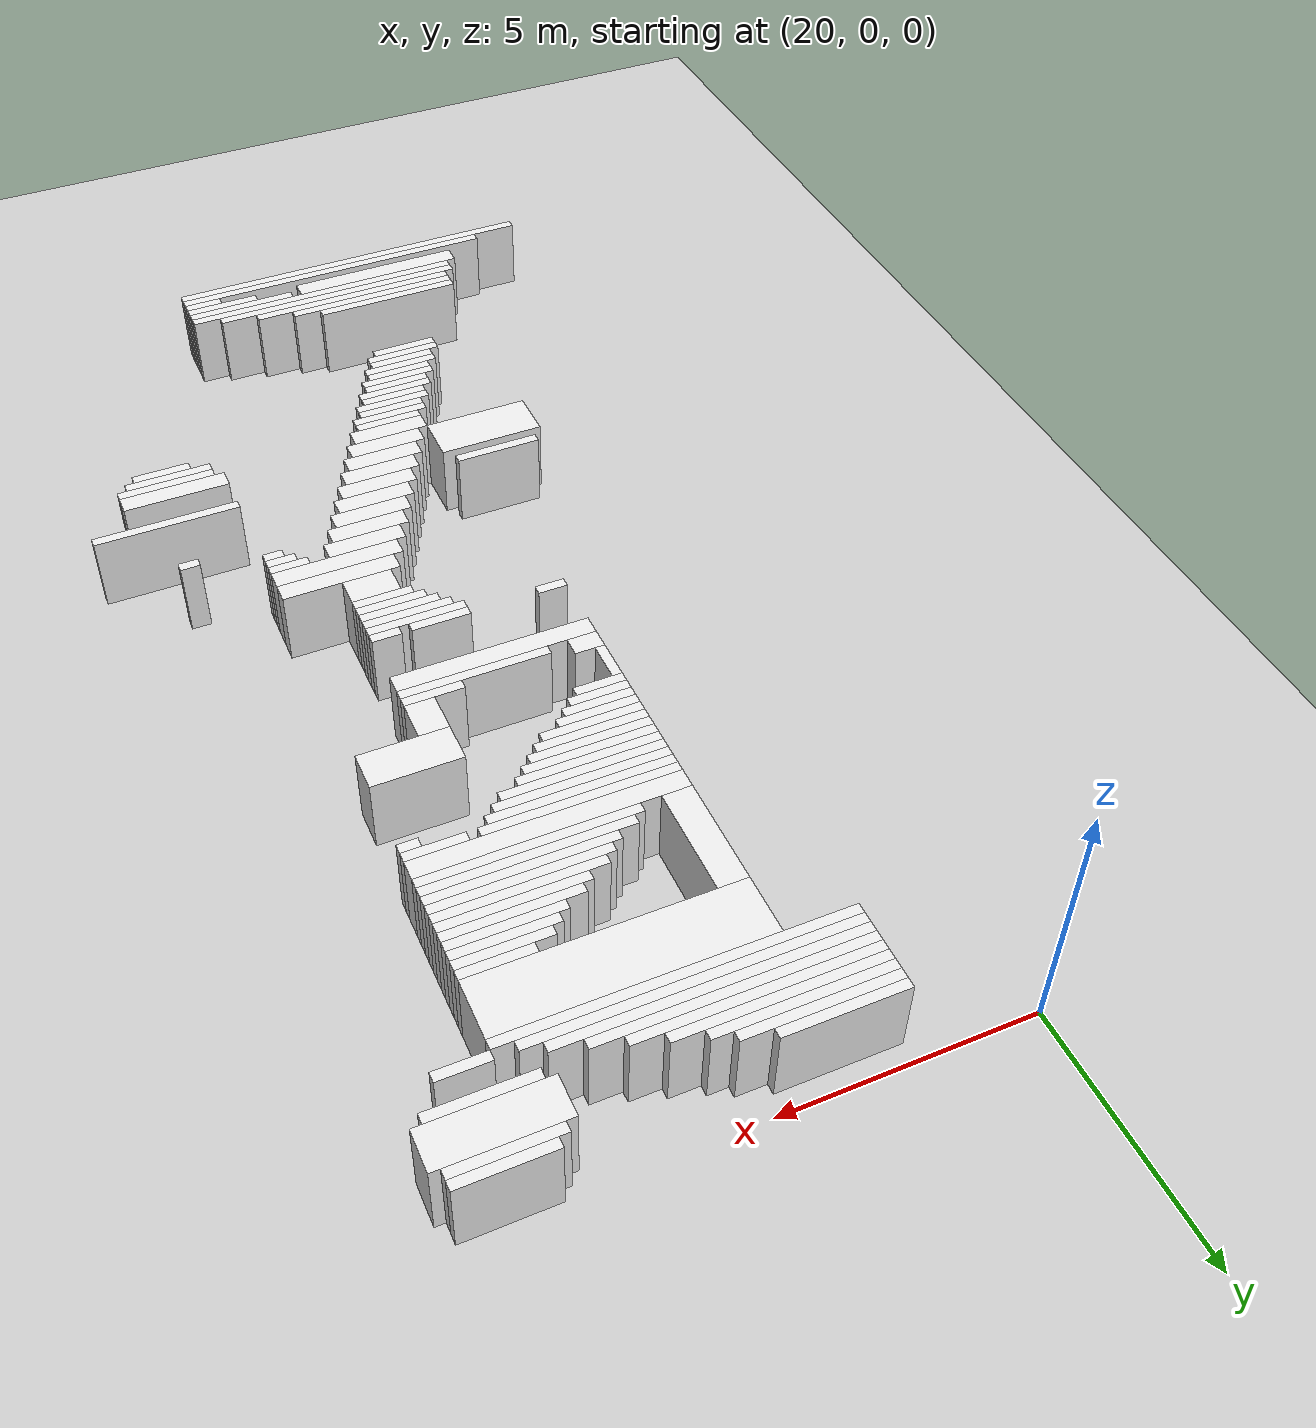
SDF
<sdf version="1.7">
 <world name="default">
  <model name="ground_plane">
   <static>1</static>
   <link name="link">
    <collision name="collision">
     <geometry><plane><normal>0 0 1</normal><size>120 120</size></plane></geometry>
    </collision>
    <visual name="visual">
     <geometry><plane><normal>0 0 1</normal><size>120 120</size></plane></geometry>
     <material>
      <script><uri>file://media/materials/scripts/gazebo.material</uri><name>Gazebo/Grey</name></script>
     </material>
    </visual>
   </link>
  </model>
  <model name="random_complex_02_model">
   <static>1</static>
   <link name="obs_1977">
    <pose>29.5000 -0.1000 0.8000 0 0 0</pose>
    <collision name="obs_1977_col"><geometry><box><size>1.8000 0.2000 1.6000</size></box></geometry></collision>
    <visual name="obs_1977_vis">
     <geometry><box><size>1.8000 0.2000 1.6000</size></box></geometry>
     <material>
      <script><uri>file://media/materials/scripts/gazebo.material</uri><name>Gazebo/White</name></script>
     </material>
    </visual>
   </link>
   <link name="obs_1984">
    <pose>29.4000 -0.3000 0.8000 0 0 0</pose>
    <collision name="obs_1984_col"><geometry><box><size>2.0000 0.2000 1.6000</size></box></geometry></collision>
    <visual name="obs_1984_vis">
     <geometry><box><size>2.0000 0.2000 1.6000</size></box></geometry>
     <material>
      <script><uri>file://media/materials/scripts/gazebo.material</uri><name>Gazebo/White</name></script>
     </material>
    </visual>
   </link>
   <link name="obs_1991">
    <pose>23.6000 -0.5000 0.8000 0 0 0</pose>
    <collision name="obs_1991_col"><geometry><box><size>2.4000 0.2000 1.6000</size></box></geometry></collision>
    <visual name="obs_1991_vis">
     <geometry><box><size>2.4000 0.2000 1.6000</size></box></geometry>
     <material>
      <script><uri>file://media/materials/scripts/gazebo.material</uri><name>Gazebo/White</name></script>
     </material>
    </visual>
   </link>
   <link name="obs_1999">
    <pose>23.9000 -0.7000 0.8000 0 0 0</pose>
    <collision name="obs_1999_col"><geometry><box><size>3.0000 0.2000 1.6000</size></box></geometry></collision>
    <visual name="obs_1999_vis">
     <geometry><box><size>3.0000 0.2000 1.6000</size></box></geometry>
     <material>
      <script><uri>file://media/materials/scripts/gazebo.material</uri><name>Gazebo/White</name></script>
     </material>
    </visual>
   </link>
   <link name="obs_2011">
    <pose>24.1000 -0.9000 0.8000 0 0 0</pose>
    <collision name="obs_2011_col"><geometry><box><size>3.4000 0.2000 1.6000</size></box></geometry></collision>
    <visual name="obs_2011_vis">
     <geometry><box><size>3.4000 0.2000 1.6000</size></box></geometry>
     <material>
      <script><uri>file://media/materials/scripts/gazebo.material</uri><name>Gazebo/White</name></script>
     </material>
    </visual>
   </link>
   <link name="obs_2016">
    <pose>29.4000 -0.8000 0.8000 0 0 0</pose>
    <collision name="obs_2016_col"><geometry><box><size>2.4000 0.8000 1.6000</size></box></geometry></collision>
    <visual name="obs_2016_vis">
     <geometry><box><size>2.4000 0.8000 1.6000</size></box></geometry>
     <material>
      <script><uri>file://media/materials/scripts/gazebo.material</uri><name>Gazebo/White</name></script>
     </material>
    </visual>
   </link>
   <link name="obs_2020">
    <pose>24.4000 -1.1000 0.8000 0 0 0</pose>
    <collision name="obs_2020_col"><geometry><box><size>4.0000 0.2000 1.6000</size></box></geometry></collision>
    <visual name="obs_2020_vis">
     <geometry><box><size>4.0000 0.2000 1.6000</size></box></geometry>
     <material>
      <script><uri>file://media/materials/scripts/gazebo.material</uri><name>Gazebo/White</name></script>
     </material>
    </visual>
   </link>
   <link name="obs_2031">
    <pose>24.7000 -1.3000 0.8000 0 0 0</pose>
    <collision name="obs_2031_col"><geometry><box><size>4.6000 0.2000 1.6000</size></box></geometry></collision>
    <visual name="obs_2031_vis">
     <geometry><box><size>4.6000 0.2000 1.6000</size></box></geometry>
     <material>
      <script><uri>file://media/materials/scripts/gazebo.material</uri><name>Gazebo/White</name></script>
     </material>
    </visual>
   </link>
   <link name="obs_2032">
    <pose>29.4000 -1.3000 0.8000 0 0 0</pose>
    <collision name="obs_2032_col"><geometry><box><size>2.0000 0.2000 1.6000</size></box></geometry></collision>
    <visual name="obs_2032_vis">
     <geometry><box><size>2.0000 0.2000 1.6000</size></box></geometry>
     <material>
      <script><uri>file://media/materials/scripts/gazebo.material</uri><name>Gazebo/White</name></script>
     </material>
    </visual>
   </link>
   <link name="obs_2041">
    <pose>25.0000 -1.5000 0.8000 0 0 0</pose>
    <collision name="obs_2041_col"><geometry><box><size>5.2000 0.2000 1.6000</size></box></geometry></collision>
    <visual name="obs_2041_vis">
     <geometry><box><size>5.2000 0.2000 1.6000</size></box></geometry>
     <material>
      <script><uri>file://media/materials/scripts/gazebo.material</uri><name>Gazebo/White</name></script>
     </material>
    </visual>
   </link>
   <link name="obs_2046">
    <pose>25.3000 -1.7000 0.8000 0 0 0</pose>
    <collision name="obs_2046_col"><geometry><box><size>5.8000 0.2000 1.6000</size></box></geometry></collision>
    <visual name="obs_2046_vis">
     <geometry><box><size>5.8000 0.2000 1.6000</size></box></geometry>
     <material>
      <script><uri>file://media/materials/scripts/gazebo.material</uri><name>Gazebo/White</name></script>
     </material>
    </visual>
   </link>
   <link name="obs_2056">
    <pose>25.5000 -1.9000 0.8000 0 0 0</pose>
    <collision name="obs_2056_col"><geometry><box><size>6.2000 0.2000 1.6000</size></box></geometry></collision>
    <visual name="obs_2056_vis">
     <geometry><box><size>6.2000 0.2000 1.6000</size></box></geometry>
     <material>
      <script><uri>file://media/materials/scripts/gazebo.material</uri><name>Gazebo/White</name></script>
     </material>
    </visual>
   </link>
   <link name="obs_2057">
    <pose>29.5000 -1.9000 0.8000 0 0 0</pose>
    <collision name="obs_2057_col"><geometry><box><size>1.0000 0.2000 1.6000</size></box></geometry></collision>
    <visual name="obs_2057_vis">
     <geometry><box><size>1.0000 0.2000 1.6000</size></box></geometry>
     <material>
      <script><uri>file://media/materials/scripts/gazebo.material</uri><name>Gazebo/White</name></script>
     </material>
    </visual>
   </link>
   <link name="obs_2066">
    <pose>25.7000 -2.1000 0.8000 0 0 0</pose>
    <collision name="obs_2066_col"><geometry><box><size>6.6000 0.2000 1.6000</size></box></geometry></collision>
    <visual name="obs_2066_vis">
     <geometry><box><size>6.6000 0.2000 1.6000</size></box></geometry>
     <material>
      <script><uri>file://media/materials/scripts/gazebo.material</uri><name>Gazebo/White</name></script>
     </material>
    </visual>
   </link>
   <link name="obs_2103">
    <pose>26.4000 -2.8000 0.8000 0 0 0</pose>
    <collision name="obs_2103_col"><geometry><box><size>5.2000 1.2000 1.6000</size></box></geometry></collision>
    <visual name="obs_2103_vis">
     <geometry><box><size>5.2000 1.2000 1.6000</size></box></geometry>
     <material>
      <script><uri>file://media/materials/scripts/gazebo.material</uri><name>Gazebo/White</name></script>
     </material>
    </visual>
   </link>
   <link name="obs_2120">
    <pose>28.3000 -3.5000 0.8000 0 0 0</pose>
    <collision name="obs_2120_col"><geometry><box><size>1.4000 0.2000 1.6000</size></box></geometry></collision>
    <visual name="obs_2120_vis">
     <geometry><box><size>1.4000 0.2000 1.6000</size></box></geometry>
     <material>
      <script><uri>file://media/materials/scripts/gazebo.material</uri><name>Gazebo/White</name></script>
     </material>
    </visual>
   </link>
   <link name="obs_2130">
    <pose>28.1000 -3.7000 0.8000 0 0 0</pose>
    <collision name="obs_2130_col"><geometry><box><size>1.8000 0.2000 1.6000</size></box></geometry></collision>
    <visual name="obs_2130_vis">
     <geometry><box><size>1.8000 0.2000 1.6000</size></box></geometry>
     <material>
      <script><uri>file://media/materials/scripts/gazebo.material</uri><name>Gazebo/White</name></script>
     </material>
    </visual>
   </link>
   <link name="obs_2140">
    <pose>28.0000 -3.9000 0.8000 0 0 0</pose>
    <collision name="obs_2140_col"><geometry><box><size>2.0000 0.2000 1.6000</size></box></geometry></collision>
    <visual name="obs_2140_vis">
     <geometry><box><size>2.0000 0.2000 1.6000</size></box></geometry>
     <material>
      <script><uri>file://media/materials/scripts/gazebo.material</uri><name>Gazebo/White</name></script>
     </material>
    </visual>
   </link>
   <link name="obs_2151">
    <pose>27.9000 -4.1000 0.8000 0 0 0</pose>
    <collision name="obs_2151_col"><geometry><box><size>2.2000 0.2000 1.6000</size></box></geometry></collision>
    <visual name="obs_2151_vis">
     <geometry><box><size>2.2000 0.2000 1.6000</size></box></geometry>
     <material>
      <script><uri>file://media/materials/scripts/gazebo.material</uri><name>Gazebo/White</name></script>
     </material>
    </visual>
   </link>
   <link name="obs_2161">
    <pose>27.7000 -4.3000 0.8000 0 0 0</pose>
    <collision name="obs_2161_col"><geometry><box><size>2.6000 0.2000 1.6000</size></box></geometry></collision>
    <visual name="obs_2161_vis">
     <geometry><box><size>2.6000 0.2000 1.6000</size></box></geometry>
     <material>
      <script><uri>file://media/materials/scripts/gazebo.material</uri><name>Gazebo/White</name></script>
     </material>
    </visual>
   </link>
   <link name="obs_2170">
    <pose>27.6000 -4.5000 0.8000 0 0 0</pose>
    <collision name="obs_2170_col"><geometry><box><size>2.8000 0.2000 1.6000</size></box></geometry></collision>
    <visual name="obs_2170_vis">
     <geometry><box><size>2.8000 0.2000 1.6000</size></box></geometry>
     <material>
      <script><uri>file://media/materials/scripts/gazebo.material</uri><name>Gazebo/White</name></script>
     </material>
    </visual>
   </link>
   <link name="obs_2175">
    <pose>27.4000 -4.7000 0.8000 0 0 0</pose>
    <collision name="obs_2175_col"><geometry><box><size>3.2000 0.2000 1.6000</size></box></geometry></collision>
    <visual name="obs_2175_vis">
     <geometry><box><size>3.2000 0.2000 1.6000</size></box></geometry>
     <material>
      <script><uri>file://media/materials/scripts/gazebo.material</uri><name>Gazebo/White</name></script>
     </material>
    </visual>
   </link>
   <link name="obs_2184">
    <pose>27.3000 -4.9000 0.8000 0 0 0</pose>
    <collision name="obs_2184_col"><geometry><box><size>3.4000 0.2000 1.6000</size></box></geometry></collision>
    <visual name="obs_2184_vis">
     <geometry><box><size>3.4000 0.2000 1.6000</size></box></geometry>
     <material>
      <script><uri>file://media/materials/scripts/gazebo.material</uri><name>Gazebo/White</name></script>
     </material>
    </visual>
   </link>
   <link name="obs_2191">
    <pose>27.2000 -5.1000 0.8000 0 0 0</pose>
    <collision name="obs_2191_col"><geometry><box><size>3.6000 0.2000 1.6000</size></box></geometry></collision>
    <visual name="obs_2191_vis">
     <geometry><box><size>3.6000 0.2000 1.6000</size></box></geometry>
     <material>
      <script><uri>file://media/materials/scripts/gazebo.material</uri><name>Gazebo/White</name></script>
     </material>
    </visual>
   </link>
   <link name="obs_2202">
    <pose>27.0000 -5.3000 0.8000 0 0 0</pose>
    <collision name="obs_2202_col"><geometry><box><size>4.0000 0.2000 1.6000</size></box></geometry></collision>
    <visual name="obs_2202_vis">
     <geometry><box><size>4.0000 0.2000 1.6000</size></box></geometry>
     <material>
      <script><uri>file://media/materials/scripts/gazebo.material</uri><name>Gazebo/White</name></script>
     </material>
    </visual>
   </link>
   <link name="obs_2204">
    <pose>24.1000 -4.5000 0.8000 0 0 0</pose>
    <collision name="obs_2204_col"><geometry><box><size>0.6000 2.2000 1.6000</size></box></geometry></collision>
    <visual name="obs_2204_vis">
     <geometry><box><size>0.6000 2.2000 1.6000</size></box></geometry>
     <material>
      <script><uri>file://media/materials/scripts/gazebo.material</uri><name>Gazebo/White</name></script>
     </material>
    </visual>
   </link>
   <link name="obs_2211">
    <pose>26.9000 -5.5000 0.8000 0 0 0</pose>
    <collision name="obs_2211_col"><geometry><box><size>4.2000 0.2000 1.6000</size></box></geometry></collision>
    <visual name="obs_2211_vis">
     <geometry><box><size>4.2000 0.2000 1.6000</size></box></geometry>
     <material>
      <script><uri>file://media/materials/scripts/gazebo.material</uri><name>Gazebo/White</name></script>
     </material>
    </visual>
   </link>
   <link name="obs_2224">
    <pose>26.4000 -5.8000 0.8000 0 0 0</pose>
    <collision name="obs_2224_col"><geometry><box><size>5.2000 0.4000 1.6000</size></box></geometry></collision>
    <visual name="obs_2224_vis">
     <geometry><box><size>5.2000 0.4000 1.6000</size></box></geometry>
     <material>
      <script><uri>file://media/materials/scripts/gazebo.material</uri><name>Gazebo/White</name></script>
     </material>
    </visual>
   </link>
   <link name="obs_2235">
    <pose>25.7000 -6.1000 0.8000 0 0 0</pose>
    <collision name="obs_2235_col"><geometry><box><size>3.8000 0.2000 1.6000</size></box></geometry></collision>
    <visual name="obs_2235_vis">
     <geometry><box><size>3.8000 0.2000 1.6000</size></box></geometry>
     <material>
      <script><uri>file://media/materials/scripts/gazebo.material</uri><name>Gazebo/White</name></script>
     </material>
    </visual>
   </link>
   <link name="obs_2236">
    <pose>28.4000 -6.1000 0.8000 0 0 0</pose>
    <collision name="obs_2236_col"><geometry><box><size>1.2000 0.2000 1.6000</size></box></geometry></collision>
    <visual name="obs_2236_vis">
     <geometry><box><size>1.2000 0.2000 1.6000</size></box></geometry>
     <material>
      <script><uri>file://media/materials/scripts/gazebo.material</uri><name>Gazebo/White</name></script>
     </material>
    </visual>
   </link>
   <link name="obs_2240">
    <pose>25.6000 -6.3000 0.8000 0 0 0</pose>
    <collision name="obs_2240_col"><geometry><box><size>3.6000 0.2000 1.6000</size></box></geometry></collision>
    <visual name="obs_2240_vis">
     <geometry><box><size>3.6000 0.2000 1.6000</size></box></geometry>
     <material>
      <script><uri>file://media/materials/scripts/gazebo.material</uri><name>Gazebo/White</name></script>
     </material>
    </visual>
   </link>
   <link name="obs_2241">
    <pose>28.8000 -6.3000 0.8000 0 0 0</pose>
    <collision name="obs_2241_col"><geometry><box><size>0.4000 0.2000 1.6000</size></box></geometry></collision>
    <visual name="obs_2241_vis">
     <geometry><box><size>0.4000 0.2000 1.6000</size></box></geometry>
     <material>
      <script><uri>file://media/materials/scripts/gazebo.material</uri><name>Gazebo/White</name></script>
     </material>
    </visual>
   </link>
   <link name="obs_2246">
    <pose>25.5000 -6.5000 0.8000 0 0 0</pose>
    <collision name="obs_2246_col"><geometry><box><size>3.4000 0.2000 1.6000</size></box></geometry></collision>
    <visual name="obs_2246_vis">
     <geometry><box><size>3.4000 0.2000 1.6000</size></box></geometry>
     <material>
      <script><uri>file://media/materials/scripts/gazebo.material</uri><name>Gazebo/White</name></script>
     </material>
    </visual>
   </link>
   <link name="obs_2251">
    <pose>25.4000 -6.7000 0.8000 0 0 0</pose>
    <collision name="obs_2251_col"><geometry><box><size>3.2000 0.2000 1.6000</size></box></geometry></collision>
    <visual name="obs_2251_vis">
     <geometry><box><size>3.2000 0.2000 1.6000</size></box></geometry>
     <material>
      <script><uri>file://media/materials/scripts/gazebo.material</uri><name>Gazebo/White</name></script>
     </material>
    </visual>
   </link>
   <link name="obs_2257">
    <pose>25.2000 -6.9000 0.8000 0 0 0</pose>
    <collision name="obs_2257_col"><geometry><box><size>2.8000 0.2000 1.6000</size></box></geometry></collision>
    <visual name="obs_2257_vis">
     <geometry><box><size>2.8000 0.2000 1.6000</size></box></geometry>
     <material>
      <script><uri>file://media/materials/scripts/gazebo.material</uri><name>Gazebo/White</name></script>
     </material>
    </visual>
   </link>
   <link name="obs_2263">
    <pose>25.1000 -7.1000 0.8000 0 0 0</pose>
    <collision name="obs_2263_col"><geometry><box><size>2.6000 0.2000 1.6000</size></box></geometry></collision>
    <visual name="obs_2263_vis">
     <geometry><box><size>2.6000 0.2000 1.6000</size></box></geometry>
     <material>
      <script><uri>file://media/materials/scripts/gazebo.material</uri><name>Gazebo/White</name></script>
     </material>
    </visual>
   </link>
   <link name="obs_2270">
    <pose>25.0000 -7.3000 0.8000 0 0 0</pose>
    <collision name="obs_2270_col"><geometry><box><size>2.4000 0.2000 1.6000</size></box></geometry></collision>
    <visual name="obs_2270_vis">
     <geometry><box><size>2.4000 0.2000 1.6000</size></box></geometry>
     <material>
      <script><uri>file://media/materials/scripts/gazebo.material</uri><name>Gazebo/White</name></script>
     </material>
    </visual>
   </link>
   <link name="obs_2277">
    <pose>24.9000 -7.5000 0.8000 0 0 0</pose>
    <collision name="obs_2277_col"><geometry><box><size>2.2000 0.2000 1.6000</size></box></geometry></collision>
    <visual name="obs_2277_vis">
     <geometry><box><size>2.2000 0.2000 1.6000</size></box></geometry>
     <material>
      <script><uri>file://media/materials/scripts/gazebo.material</uri><name>Gazebo/White</name></script>
     </material>
    </visual>
   </link>
   <link name="obs_2283">
    <pose>24.8000 -7.7000 0.8000 0 0 0</pose>
    <collision name="obs_2283_col"><geometry><box><size>2.0000 0.2000 1.6000</size></box></geometry></collision>
    <visual name="obs_2283_vis">
     <geometry><box><size>2.0000 0.2000 1.6000</size></box></geometry>
     <material>
      <script><uri>file://media/materials/scripts/gazebo.material</uri><name>Gazebo/White</name></script>
     </material>
    </visual>
   </link>
   <link name="obs_2293">
    <pose>24.6000 -7.9000 0.8000 0 0 0</pose>
    <collision name="obs_2293_col"><geometry><box><size>1.6000 0.2000 1.6000</size></box></geometry></collision>
    <visual name="obs_2293_vis">
     <geometry><box><size>1.6000 0.2000 1.6000</size></box></geometry>
     <material>
      <script><uri>file://media/materials/scripts/gazebo.material</uri><name>Gazebo/White</name></script>
     </material>
    </visual>
   </link>
   <link name="obs_2301">
    <pose>24.5000 -8.1000 0.8000 0 0 0</pose>
    <collision name="obs_2301_col"><geometry><box><size>1.4000 0.2000 1.6000</size></box></geometry></collision>
    <visual name="obs_2301_vis">
     <geometry><box><size>1.4000 0.2000 1.6000</size></box></geometry>
     <material>
      <script><uri>file://media/materials/scripts/gazebo.material</uri><name>Gazebo/White</name></script>
     </material>
    </visual>
   </link>
   <link name="obs_2307">
    <pose>24.4000 -8.3000 0.8000 0 0 0</pose>
    <collision name="obs_2307_col"><geometry><box><size>1.2000 0.2000 1.6000</size></box></geometry></collision>
    <visual name="obs_2307_vis">
     <geometry><box><size>1.2000 0.2000 1.6000</size></box></geometry>
     <material>
      <script><uri>file://media/materials/scripts/gazebo.material</uri><name>Gazebo/White</name></script>
     </material>
    </visual>
   </link>
   <link name="obs_2309">
    <pose>28.1000 -8.2000 0.8000 0 0 0</pose>
    <collision name="obs_2309_col"><geometry><box><size>1.8000 0.8000 1.6000</size></box></geometry></collision>
    <visual name="obs_2309_vis">
     <geometry><box><size>1.8000 0.8000 1.6000</size></box></geometry>
     <material>
      <script><uri>file://media/materials/scripts/gazebo.material</uri><name>Gazebo/White</name></script>
     </material>
    </visual>
   </link>
   <link name="obs_2314">
    <pose>24.3000 -8.5000 0.8000 0 0 0</pose>
    <collision name="obs_2314_col"><geometry><box><size>1.0000 0.2000 1.6000</size></box></geometry></collision>
    <visual name="obs_2314_vis">
     <geometry><box><size>1.0000 0.2000 1.6000</size></box></geometry>
     <material>
      <script><uri>file://media/materials/scripts/gazebo.material</uri><name>Gazebo/White</name></script>
     </material>
    </visual>
   </link>
   <link name="obs_2331">
    <pose>23.9000 -9.0000 0.8000 0 0 0</pose>
    <collision name="obs_2331_col"><geometry><box><size>0.2000 0.8000 1.6000</size></box></geometry></collision>
    <visual name="obs_2331_vis">
     <geometry><box><size>0.2000 0.8000 1.6000</size></box></geometry>
     <material>
      <script><uri>file://media/materials/scripts/gazebo.material</uri><name>Gazebo/White</name></script>
     </material>
    </visual>
   </link>
   <link name="obs_2332">
    <pose>27.5000 -9.0000 0.8000 0 0 0</pose>
    <collision name="obs_2332_col"><geometry><box><size>0.6000 0.8000 1.6000</size></box></geometry></collision>
    <visual name="obs_2332_vis">
     <geometry><box><size>0.6000 0.8000 1.6000</size></box></geometry>
     <material>
      <script><uri>file://media/materials/scripts/gazebo.material</uri><name>Gazebo/White</name></script>
     </material>
    </visual>
   </link>
   <link name="obs_2343">
    <pose>27.2000 -9.5000 0.8000 0 0 0</pose>
    <collision name="obs_2343_col"><geometry><box><size>1.2000 0.2000 1.6000</size></box></geometry></collision>
    <visual name="obs_2343_vis">
     <geometry><box><size>1.2000 0.2000 1.6000</size></box></geometry>
     <material>
      <script><uri>file://media/materials/scripts/gazebo.material</uri><name>Gazebo/White</name></script>
     </material>
    </visual>
   </link>
   <link name="obs_2344">
    <pose>24.1000 -9.6000 0.8000 0 0 0</pose>
    <collision name="obs_2344_col"><geometry><box><size>0.6000 0.4000 1.6000</size></box></geometry></collision>
    <visual name="obs_2344_vis">
     <geometry><box><size>0.6000 0.4000 1.6000</size></box></geometry>
     <material>
      <script><uri>file://media/materials/scripts/gazebo.material</uri><name>Gazebo/White</name></script>
     </material>
    </visual>
   </link>
   <link name="obs_2349">
    <pose>26.3000 -9.7000 0.8000 0 0 0</pose>
    <collision name="obs_2349_col"><geometry><box><size>3.0000 0.2000 1.6000</size></box></geometry></collision>
    <visual name="obs_2349_vis">
     <geometry><box><size>3.0000 0.2000 1.6000</size></box></geometry>
     <material>
      <script><uri>file://media/materials/scripts/gazebo.material</uri><name>Gazebo/White</name></script>
     </material>
    </visual>
   </link>
   <link name="obs_2357">
    <pose>25.8000 -10.0000 0.8000 0 0 0</pose>
    <collision name="obs_2357_col"><geometry><box><size>4.0000 0.4000 1.6000</size></box></geometry></collision>
    <visual name="obs_2357_vis">
     <geometry><box><size>4.0000 0.4000 1.6000</size></box></geometry>
     <material>
      <script><uri>file://media/materials/scripts/gazebo.material</uri><name>Gazebo/White</name></script>
     </material>
    </visual>
   </link>
   <link name="obs_2398">
    <pose>24.1000 -11.3000 0.8000 0 0 0</pose>
    <collision name="obs_2398_col"><geometry><box><size>0.6000 0.2000 1.6000</size></box></geometry></collision>
    <visual name="obs_2398_vis">
     <geometry><box><size>0.6000 0.2000 1.6000</size></box></geometry>
     <material>
      <script><uri>file://media/materials/scripts/gazebo.material</uri><name>Gazebo/White</name></script>
     </material>
    </visual>
   </link>
   <link name="obs_2399">
    <pose>26.4000 -11.3000 0.8000 0 0 0</pose>
    <collision name="obs_2399_col"><geometry><box><size>1.2000 0.2000 1.6000</size></box></geometry></collision>
    <visual name="obs_2399_vis">
     <geometry><box><size>1.2000 0.2000 1.6000</size></box></geometry>
     <material>
      <script><uri>file://media/materials/scripts/gazebo.material</uri><name>Gazebo/White</name></script>
     </material>
    </visual>
   </link>
   <link name="obs_2400">
    <pose>27.5000 -11.3000 0.8000 0 0 0</pose>
    <collision name="obs_2400_col"><geometry><box><size>0.6000 0.2000 1.6000</size></box></geometry></collision>
    <visual name="obs_2400_vis">
     <geometry><box><size>0.6000 0.2000 1.6000</size></box></geometry>
     <material>
      <script><uri>file://media/materials/scripts/gazebo.material</uri><name>Gazebo/White</name></script>
     </material>
    </visual>
   </link>
   <link name="obs_2406">
    <pose>26.8000 -11.5000 0.8000 0 0 0</pose>
    <collision name="obs_2406_col"><geometry><box><size>2.0000 0.2000 1.6000</size></box></geometry></collision>
    <visual name="obs_2406_vis">
     <geometry><box><size>2.0000 0.2000 1.6000</size></box></geometry>
     <material>
      <script><uri>file://media/materials/scripts/gazebo.material</uri><name>Gazebo/White</name></script>
     </material>
    </visual>
   </link>
   <link name="obs_2414">
    <pose>26.9000 -11.7000 0.8000 0 0 0</pose>
    <collision name="obs_2414_col"><geometry><box><size>1.8000 0.2000 1.6000</size></box></geometry></collision>
    <visual name="obs_2414_vis">
     <geometry><box><size>1.8000 0.2000 1.6000</size></box></geometry>
     <material>
      <script><uri>file://media/materials/scripts/gazebo.material</uri><name>Gazebo/White</name></script>
     </material>
    </visual>
   </link>
   <link name="obs_2422">
    <pose>27.0000 -11.9000 0.8000 0 0 0</pose>
    <collision name="obs_2422_col"><geometry><box><size>1.6000 0.2000 1.6000</size></box></geometry></collision>
    <visual name="obs_2422_vis">
     <geometry><box><size>1.6000 0.2000 1.6000</size></box></geometry>
     <material>
      <script><uri>file://media/materials/scripts/gazebo.material</uri><name>Gazebo/White</name></script>
     </material>
    </visual>
   </link>
   <link name="obs_2430">
    <pose>27.1000 -12.1000 0.8000 0 0 0</pose>
    <collision name="obs_2430_col"><geometry><box><size>1.4000 0.2000 1.6000</size></box></geometry></collision>
    <visual name="obs_2430_vis">
     <geometry><box><size>1.4000 0.2000 1.6000</size></box></geometry>
     <material>
      <script><uri>file://media/materials/scripts/gazebo.material</uri><name>Gazebo/White</name></script>
     </material>
    </visual>
   </link>
   <link name="obs_2438">
    <pose>27.2000 -12.3000 0.8000 0 0 0</pose>
    <collision name="obs_2438_col"><geometry><box><size>1.2000 0.2000 1.6000</size></box></geometry></collision>
    <visual name="obs_2438_vis">
     <geometry><box><size>1.2000 0.2000 1.6000</size></box></geometry>
     <material>
      <script><uri>file://media/materials/scripts/gazebo.material</uri><name>Gazebo/White</name></script>
     </material>
    </visual>
   </link>
   <link name="obs_2461">
    <pose>27.3000 -12.7000 0.8000 0 0 0</pose>
    <collision name="obs_2461_col"><geometry><box><size>1.0000 0.6000 1.6000</size></box></geometry></collision>
    <visual name="obs_2461_vis">
     <geometry><box><size>1.0000 0.6000 1.6000</size></box></geometry>
     <material>
      <script><uri>file://media/materials/scripts/gazebo.material</uri><name>Gazebo/White</name></script>
     </material>
    </visual>
   </link>
   <link name="obs_2472">
    <pose>27.8000 -13.2000 0.8000 0 0 0</pose>
    <collision name="obs_2472_col"><geometry><box><size>2.4000 0.4000 1.6000</size></box></geometry></collision>
    <visual name="obs_2472_vis">
     <geometry><box><size>2.4000 0.4000 1.6000</size></box></geometry>
     <material>
      <script><uri>file://media/materials/scripts/gazebo.material</uri><name>Gazebo/White</name></script>
     </material>
    </visual>
   </link>
   <link name="obs_2485">
    <pose>27.7000 -13.6000 0.8000 0 0 0</pose>
    <collision name="obs_2485_col"><geometry><box><size>2.6000 0.4000 1.6000</size></box></geometry></collision>
    <visual name="obs_2485_vis">
     <geometry><box><size>2.6000 0.4000 1.6000</size></box></geometry>
     <material>
      <script><uri>file://media/materials/scripts/gazebo.material</uri><name>Gazebo/White</name></script>
     </material>
    </visual>
   </link>
   <link name="obs_2499">
    <pose>28.6000 -13.9000 0.8000 0 0 0</pose>
    <collision name="obs_2499_col"><geometry><box><size>0.8000 0.2000 1.6000</size></box></geometry></collision>
    <visual name="obs_2499_vis">
     <geometry><box><size>0.8000 0.2000 1.6000</size></box></geometry>
     <material>
      <script><uri>file://media/materials/scripts/gazebo.material</uri><name>Gazebo/White</name></script>
     </material>
    </visual>
   </link>
   <link name="obs_2502">
    <pose>27.0000 -14.0000 0.8000 0 0 0</pose>
    <collision name="obs_2502_col"><geometry><box><size>1.6000 0.4000 1.6000</size></box></geometry></collision>
    <visual name="obs_2502_vis">
     <geometry><box><size>1.6000 0.4000 1.6000</size></box></geometry>
     <material>
      <script><uri>file://media/materials/scripts/gazebo.material</uri><name>Gazebo/White</name></script>
     </material>
    </visual>
   </link>
   <link name="obs_2507">
    <pose>28.7000 -14.1000 0.8000 0 0 0</pose>
    <collision name="obs_2507_col"><geometry><box><size>0.6000 0.2000 1.6000</size></box></geometry></collision>
    <visual name="obs_2507_vis">
     <geometry><box><size>0.6000 0.2000 1.6000</size></box></geometry>
     <material>
      <script><uri>file://media/materials/scripts/gazebo.material</uri><name>Gazebo/White</name></script>
     </material>
    </visual>
   </link>
   <link name="obs_2518">
    <pose>28.8000 -14.3000 0.8000 0 0 0</pose>
    <collision name="obs_2518_col"><geometry><box><size>0.4000 0.2000 1.6000</size></box></geometry></collision>
    <visual name="obs_2518_vis">
     <geometry><box><size>0.4000 0.2000 1.6000</size></box></geometry>
     <material>
      <script><uri>file://media/materials/scripts/gazebo.material</uri><name>Gazebo/White</name></script>
     </material>
    </visual>
   </link>
   <link name="obs_2522">
    <pose>26.8000 -14.4000 0.8000 0 0 0</pose>
    <collision name="obs_2522_col"><geometry><box><size>1.6000 0.4000 1.6000</size></box></geometry></collision>
    <visual name="obs_2522_vis">
     <geometry><box><size>1.6000 0.4000 1.6000</size></box></geometry>
     <material>
      <script><uri>file://media/materials/scripts/gazebo.material</uri><name>Gazebo/White</name></script>
     </material>
    </visual>
   </link>
   <link name="obs_2537">
    <pose>30.4000 -14.7000 0.8000 0 0 0</pose>
    <collision name="obs_2537_col"><geometry><box><size>0.4000 0.2000 1.6000</size></box></geometry></collision>
    <visual name="obs_2537_vis">
     <geometry><box><size>0.4000 0.2000 1.6000</size></box></geometry>
     <material>
      <script><uri>file://media/materials/scripts/gazebo.material</uri><name>Gazebo/White</name></script>
     </material>
    </visual>
   </link>
   <link name="obs_2541">
    <pose>26.6000 -14.8000 0.8000 0 0 0</pose>
    <collision name="obs_2541_col"><geometry><box><size>1.6000 0.4000 1.6000</size></box></geometry></collision>
    <visual name="obs_2541_vis">
     <geometry><box><size>1.6000 0.4000 1.6000</size></box></geometry>
     <material>
      <script><uri>file://media/materials/scripts/gazebo.material</uri><name>Gazebo/White</name></script>
     </material>
    </visual>
   </link>
   <link name="obs_2561">
    <pose>26.4000 -15.2000 0.8000 0 0 0</pose>
    <collision name="obs_2561_col"><geometry><box><size>1.6000 0.4000 1.6000</size></box></geometry></collision>
    <visual name="obs_2561_vis">
     <geometry><box><size>1.6000 0.4000 1.6000</size></box></geometry>
     <material>
      <script><uri>file://media/materials/scripts/gazebo.material</uri><name>Gazebo/White</name></script>
     </material>
    </visual>
   </link>
   <link name="obs_2582">
    <pose>26.2000 -15.6000 0.8000 0 0 0</pose>
    <collision name="obs_2582_col"><geometry><box><size>1.6000 0.4000 1.6000</size></box></geometry></collision>
    <visual name="obs_2582_vis">
     <geometry><box><size>1.6000 0.4000 1.6000</size></box></geometry>
     <material>
      <script><uri>file://media/materials/scripts/gazebo.material</uri><name>Gazebo/White</name></script>
     </material>
    </visual>
   </link>
   <link name="obs_2591">
    <pose>23.5000 -15.7000 0.8000 0 0 0</pose>
    <collision name="obs_2591_col"><geometry><box><size>1.8000 0.2000 1.6000</size></box></geometry></collision>
    <visual name="obs_2591_vis">
     <geometry><box><size>1.8000 0.2000 1.6000</size></box></geometry>
     <material>
      <script><uri>file://media/materials/scripts/gazebo.material</uri><name>Gazebo/White</name></script>
     </material>
    </visual>
   </link>
   <link name="obs_2607">
    <pose>26.0000 -16.0000 0.8000 0 0 0</pose>
    <collision name="obs_2607_col"><geometry><box><size>1.6000 0.4000 1.6000</size></box></geometry></collision>
    <visual name="obs_2607_vis">
     <geometry><box><size>1.6000 0.4000 1.6000</size></box></geometry>
     <material>
      <script><uri>file://media/materials/scripts/gazebo.material</uri><name>Gazebo/White</name></script>
     </material>
    </visual>
   </link>
   <link name="obs_2612">
    <pose>30.5000 -16.1000 0.8000 0 0 0</pose>
    <collision name="obs_2612_col"><geometry><box><size>3.0000 0.2000 1.6000</size></box></geometry></collision>
    <visual name="obs_2612_vis">
     <geometry><box><size>3.0000 0.2000 1.6000</size></box></geometry>
     <material>
      <script><uri>file://media/materials/scripts/gazebo.material</uri><name>Gazebo/White</name></script>
     </material>
    </visual>
   </link>
   <link name="obs_2620">
    <pose>25.8000 -16.4000 0.8000 0 0 0</pose>
    <collision name="obs_2620_col"><geometry><box><size>1.6000 0.4000 1.6000</size></box></geometry></collision>
    <visual name="obs_2620_vis">
     <geometry><box><size>1.6000 0.4000 1.6000</size></box></geometry>
     <material>
      <script><uri>file://media/materials/scripts/gazebo.material</uri><name>Gazebo/White</name></script>
     </material>
    </visual>
   </link>
   <link name="obs_2635">
    <pose>23.5000 -16.5000 0.8000 0 0 0</pose>
    <collision name="obs_2635_col"><geometry><box><size>2.2000 1.0000 1.6000</size></box></geometry></collision>
    <visual name="obs_2635_vis">
     <geometry><box><size>2.2000 1.0000 1.6000</size></box></geometry>
     <material>
      <script><uri>file://media/materials/scripts/gazebo.material</uri><name>Gazebo/White</name></script>
     </material>
    </visual>
   </link>
   <link name="obs_2636">
    <pose>25.6000 -16.8000 0.8000 0 0 0</pose>
    <collision name="obs_2636_col"><geometry><box><size>1.6000 0.4000 1.6000</size></box></geometry></collision>
    <visual name="obs_2636_vis">
     <geometry><box><size>1.6000 0.4000 1.6000</size></box></geometry>
     <material>
      <script><uri>file://media/materials/scripts/gazebo.material</uri><name>Gazebo/White</name></script>
     </material>
    </visual>
   </link>
   <link name="obs_2642">
    <pose>30.1000 -17.0000 0.8000 0 0 0</pose>
    <collision name="obs_2642_col"><geometry><box><size>2.2000 0.4000 1.6000</size></box></geometry></collision>
    <visual name="obs_2642_vis">
     <geometry><box><size>2.2000 0.4000 1.6000</size></box></geometry>
     <material>
      <script><uri>file://media/materials/scripts/gazebo.material</uri><name>Gazebo/White</name></script>
     </material>
    </visual>
   </link>
   <link name="obs_2649">
    <pose>25.4000 -17.2000 0.8000 0 0 0</pose>
    <collision name="obs_2649_col"><geometry><box><size>1.6000 0.4000 1.6000</size></box></geometry></collision>
    <visual name="obs_2649_vis">
     <geometry><box><size>1.6000 0.4000 1.6000</size></box></geometry>
     <material>
      <script><uri>file://media/materials/scripts/gazebo.material</uri><name>Gazebo/White</name></script>
     </material>
    </visual>
   </link>
   <link name="obs_2652">
    <pose>30.2000 -17.3000 0.8000 0 0 0</pose>
    <collision name="obs_2652_col"><geometry><box><size>2.0000 0.2000 1.6000</size></box></geometry></collision>
    <visual name="obs_2652_vis">
     <geometry><box><size>2.0000 0.2000 1.6000</size></box></geometry>
     <material>
      <script><uri>file://media/materials/scripts/gazebo.material</uri><name>Gazebo/White</name></script>
     </material>
    </visual>
   </link>
   <link name="obs_2658">
    <pose>25.3000 -17.5000 0.8000 0 0 0</pose>
    <collision name="obs_2658_col"><geometry><box><size>1.4000 0.2000 1.6000</size></box></geometry></collision>
    <visual name="obs_2658_vis">
     <geometry><box><size>1.4000 0.2000 1.6000</size></box></geometry>
     <material>
      <script><uri>file://media/materials/scripts/gazebo.material</uri><name>Gazebo/White</name></script>
     </material>
    </visual>
   </link>
   <link name="obs_2659">
    <pose>30.1000 -17.5000 0.8000 0 0 0</pose>
    <collision name="obs_2659_col"><geometry><box><size>1.8000 0.2000 1.6000</size></box></geometry></collision>
    <visual name="obs_2659_vis">
     <geometry><box><size>1.8000 0.2000 1.6000</size></box></geometry>
     <material>
      <script><uri>file://media/materials/scripts/gazebo.material</uri><name>Gazebo/White</name></script>
     </material>
    </visual>
   </link>
   <link name="obs_2671">
    <pose>25.2000 -17.7000 0.8000 0 0 0</pose>
    <collision name="obs_2671_col"><geometry><box><size>1.6000 0.2000 1.6000</size></box></geometry></collision>
    <visual name="obs_2671_vis">
     <geometry><box><size>1.6000 0.2000 1.6000</size></box></geometry>
     <material>
      <script><uri>file://media/materials/scripts/gazebo.material</uri><name>Gazebo/White</name></script>
     </material>
    </visual>
   </link>
   <link name="obs_2672">
    <pose>30.2000 -17.7000 0.8000 0 0 0</pose>
    <collision name="obs_2672_col"><geometry><box><size>1.2000 0.2000 1.6000</size></box></geometry></collision>
    <visual name="obs_2672_vis">
     <geometry><box><size>1.2000 0.2000 1.6000</size></box></geometry>
     <material>
      <script><uri>file://media/materials/scripts/gazebo.material</uri><name>Gazebo/White</name></script>
     </material>
    </visual>
   </link>
   <link name="obs_2680">
    <pose>25.1000 -17.9000 0.8000 0 0 0</pose>
    <collision name="obs_2680_col"><geometry><box><size>1.4000 0.2000 1.6000</size></box></geometry></collision>
    <visual name="obs_2680_vis">
     <geometry><box><size>1.4000 0.2000 1.6000</size></box></geometry>
     <material>
      <script><uri>file://media/materials/scripts/gazebo.material</uri><name>Gazebo/White</name></script>
     </material>
    </visual>
   </link>
   <link name="obs_2689">
    <pose>25.0000 -18.1000 0.8000 0 0 0</pose>
    <collision name="obs_2689_col"><geometry><box><size>1.6000 0.2000 1.6000</size></box></geometry></collision>
    <visual name="obs_2689_vis">
     <geometry><box><size>1.6000 0.2000 1.6000</size></box></geometry>
     <material>
      <script><uri>file://media/materials/scripts/gazebo.material</uri><name>Gazebo/White</name></script>
     </material>
    </visual>
   </link>
   <link name="obs_2699">
    <pose>24.9000 -18.3000 0.8000 0 0 0</pose>
    <collision name="obs_2699_col"><geometry><box><size>1.4000 0.2000 1.6000</size></box></geometry></collision>
    <visual name="obs_2699_vis">
     <geometry><box><size>1.4000 0.2000 1.6000</size></box></geometry>
     <material>
      <script><uri>file://media/materials/scripts/gazebo.material</uri><name>Gazebo/White</name></script>
     </material>
    </visual>
   </link>
   <link name="obs_2706">
    <pose>24.8000 -18.5000 0.8000 0 0 0</pose>
    <collision name="obs_2706_col"><geometry><box><size>1.6000 0.2000 1.6000</size></box></geometry></collision>
    <visual name="obs_2706_vis">
     <geometry><box><size>1.6000 0.2000 1.6000</size></box></geometry>
     <material>
      <script><uri>file://media/materials/scripts/gazebo.material</uri><name>Gazebo/White</name></script>
     </material>
    </visual>
   </link>
   <link name="obs_2714">
    <pose>24.7000 -18.7000 0.8000 0 0 0</pose>
    <collision name="obs_2714_col"><geometry><box><size>1.4000 0.2000 1.6000</size></box></geometry></collision>
    <visual name="obs_2714_vis">
     <geometry><box><size>1.4000 0.2000 1.6000</size></box></geometry>
     <material>
      <script><uri>file://media/materials/scripts/gazebo.material</uri><name>Gazebo/White</name></script>
     </material>
    </visual>
   </link>
   <link name="obs_2725">
    <pose>24.6000 -18.9000 0.8000 0 0 0</pose>
    <collision name="obs_2725_col"><geometry><box><size>1.6000 0.2000 1.6000</size></box></geometry></collision>
    <visual name="obs_2725_vis">
     <geometry><box><size>1.6000 0.2000 1.6000</size></box></geometry>
     <material>
      <script><uri>file://media/materials/scripts/gazebo.material</uri><name>Gazebo/White</name></script>
     </material>
    </visual>
   </link>
   <link name="obs_2735">
    <pose>24.5000 -19.1000 0.8000 0 0 0</pose>
    <collision name="obs_2735_col"><geometry><box><size>1.4000 0.2000 1.6000</size></box></geometry></collision>
    <visual name="obs_2735_vis">
     <geometry><box><size>1.4000 0.2000 1.6000</size></box></geometry>
     <material>
      <script><uri>file://media/materials/scripts/gazebo.material</uri><name>Gazebo/White</name></script>
     </material>
    </visual>
   </link>
   <link name="obs_2746">
    <pose>24.4000 -19.3000 0.8000 0 0 0</pose>
    <collision name="obs_2746_col"><geometry><box><size>1.6000 0.2000 1.6000</size></box></geometry></collision>
    <visual name="obs_2746_vis">
     <geometry><box><size>1.6000 0.2000 1.6000</size></box></geometry>
     <material>
      <script><uri>file://media/materials/scripts/gazebo.material</uri><name>Gazebo/White</name></script>
     </material>
    </visual>
   </link>
   <link name="obs_2757">
    <pose>24.3000 -19.5000 0.8000 0 0 0</pose>
    <collision name="obs_2757_col"><geometry><box><size>1.4000 0.2000 1.6000</size></box></geometry></collision>
    <visual name="obs_2757_vis">
     <geometry><box><size>1.4000 0.2000 1.6000</size></box></geometry>
     <material>
      <script><uri>file://media/materials/scripts/gazebo.material</uri><name>Gazebo/White</name></script>
     </material>
    </visual>
   </link>
   <link name="obs_2768">
    <pose>24.2000 -19.7000 0.8000 0 0 0</pose>
    <collision name="obs_2768_col"><geometry><box><size>1.6000 0.2000 1.6000</size></box></geometry></collision>
    <visual name="obs_2768_vis">
     <geometry><box><size>1.6000 0.2000 1.6000</size></box></geometry>
     <material>
      <script><uri>file://media/materials/scripts/gazebo.material</uri><name>Gazebo/White</name></script>
     </material>
    </visual>
   </link>
   <link name="obs_2775">
    <pose>24.1000 -19.9000 0.8000 0 0 0</pose>
    <collision name="obs_2775_col"><geometry><box><size>1.4000 0.2000 1.6000</size></box></geometry></collision>
    <visual name="obs_2775_vis">
     <geometry><box><size>1.4000 0.2000 1.6000</size></box></geometry>
     <material>
      <script><uri>file://media/materials/scripts/gazebo.material</uri><name>Gazebo/White</name></script>
     </material>
    </visual>
   </link>
   <link name="obs_2839">
    <pose>23.8000 -21.9000 0.8000 0 0 0</pose>
    <collision name="obs_2839_col"><geometry><box><size>3.2000 0.2000 1.6000</size></box></geometry></collision>
    <visual name="obs_2839_vis">
     <geometry><box><size>3.2000 0.2000 1.6000</size></box></geometry>
     <material>
      <script><uri>file://media/materials/scripts/gazebo.material</uri><name>Gazebo/White</name></script>
     </material>
    </visual>
   </link>
   <link name="obs_2845">
    <pose>24.1000 -22.1000 0.8000 0 0 0</pose>
    <collision name="obs_2845_col"><geometry><box><size>3.8000 0.2000 1.6000</size></box></geometry></collision>
    <visual name="obs_2845_vis">
     <geometry><box><size>3.8000 0.2000 1.6000</size></box></geometry>
     <material>
      <script><uri>file://media/materials/scripts/gazebo.material</uri><name>Gazebo/White</name></script>
     </material>
    </visual>
   </link>
   <link name="obs_2850">
    <pose>24.5000 -22.3000 0.8000 0 0 0</pose>
    <collision name="obs_2850_col"><geometry><box><size>4.6000 0.2000 1.6000</size></box></geometry></collision>
    <visual name="obs_2850_vis">
     <geometry><box><size>4.6000 0.2000 1.6000</size></box></geometry>
     <material>
      <script><uri>file://media/materials/scripts/gazebo.material</uri><name>Gazebo/White</name></script>
     </material>
    </visual>
   </link>
   <link name="obs_2854">
    <pose>24.8000 -22.5000 0.8000 0 0 0</pose>
    <collision name="obs_2854_col"><geometry><box><size>5.6000 0.2000 1.6000</size></box></geometry></collision>
    <visual name="obs_2854_vis">
     <geometry><box><size>5.6000 0.2000 1.6000</size></box></geometry>
     <material>
      <script><uri>file://media/materials/scripts/gazebo.material</uri><name>Gazebo/White</name></script>
     </material>
    </visual>
   </link>
   <link name="obs_2862">
    <pose>25.1000 -22.7000 0.8000 0 0 0</pose>
    <collision name="obs_2862_col"><geometry><box><size>6.2000 0.2000 1.6000</size></box></geometry></collision>
    <visual name="obs_2862_vis">
     <geometry><box><size>6.2000 0.2000 1.6000</size></box></geometry>
     <material>
      <script><uri>file://media/materials/scripts/gazebo.material</uri><name>Gazebo/White</name></script>
     </material>
    </visual>
   </link>
   <link name="obs_2870">
    <pose>27.0000 -22.9000 0.8000 0 0 0</pose>
    <collision name="obs_2870_col"><geometry><box><size>2.4000 0.2000 1.6000</size></box></geometry></collision>
    <visual name="obs_2870_vis">
     <geometry><box><size>2.4000 0.2000 1.6000</size></box></geometry>
     <material>
      <script><uri>file://media/materials/scripts/gazebo.material</uri><name>Gazebo/White</name></script>
     </material>
    </visual>
   </link>
   <link name="obs_2876">
    <pose>23.7000 -23.0000 0.8000 0 0 0</pose>
    <collision name="obs_2876_col"><geometry><box><size>3.8000 0.4000 1.6000</size></box></geometry></collision>
    <visual name="obs_2876_vis">
     <geometry><box><size>3.8000 0.4000 1.6000</size></box></geometry>
     <material>
      <script><uri>file://media/materials/scripts/gazebo.material</uri><name>Gazebo/White</name></script>
     </material>
    </visual>
   </link>
   <link name="obs_2880">
    <pose>27.4000 -23.1000 0.8000 0 0 0</pose>
    <collision name="obs_2880_col"><geometry><box><size>1.6000 0.2000 1.6000</size></box></geometry></collision>
    <visual name="obs_2880_vis">
     <geometry><box><size>1.6000 0.2000 1.6000</size></box></geometry>
     <material>
      <script><uri>file://media/materials/scripts/gazebo.material</uri><name>Gazebo/White</name></script>
     </material>
    </visual>
   </link>
   <link name="obs_2888">
    <pose>27.8000 -23.3000 0.8000 0 0 0</pose>
    <collision name="obs_2888_col"><geometry><box><size>0.8000 0.2000 1.6000</size></box></geometry></collision>
    <visual name="obs_2888_vis">
     <geometry><box><size>0.8000 0.2000 1.6000</size></box></geometry>
     <material>
      <script><uri>file://media/materials/scripts/gazebo.material</uri><name>Gazebo/White</name></script>
     </material>
    </visual>
   </link>
   <link name="obs_2895">
    <pose>24.6000 -23.5000 0.8000 0 0 0</pose>
    <collision name="obs_2895_col"><geometry><box><size>7.2000 0.2000 1.6000</size></box></geometry></collision>
    <visual name="obs_2895_vis">
     <geometry><box><size>7.2000 0.2000 1.6000</size></box></geometry>
     <material>
      <script><uri>file://media/materials/scripts/gazebo.material</uri><name>Gazebo/White</name></script>
     </material>
    </visual>
   </link>
   <link name="obs_2903">
    <pose>24.1000 -23.7000 0.8000 0 0 0</pose>
    <collision name="obs_2903_col"><geometry><box><size>8.2000 0.2000 1.6000</size></box></geometry></collision>
    <visual name="obs_2903_vis">
     <geometry><box><size>8.2000 0.2000 1.6000</size></box></geometry>
     <material>
      <script><uri>file://media/materials/scripts/gazebo.material</uri><name>Gazebo/White</name></script>
     </material>
    </visual>
   </link>
  </model>
 </world>
</sdf>
